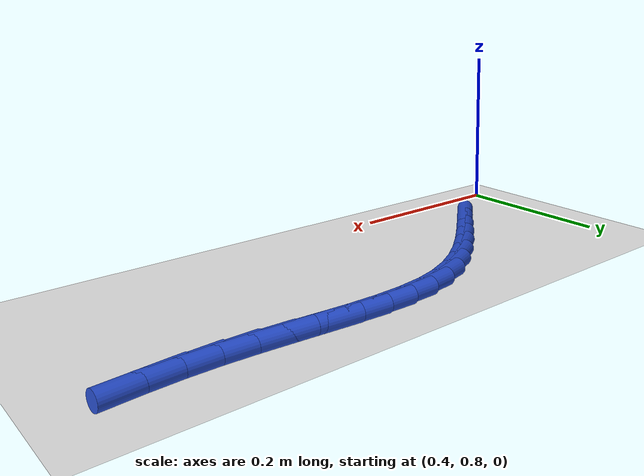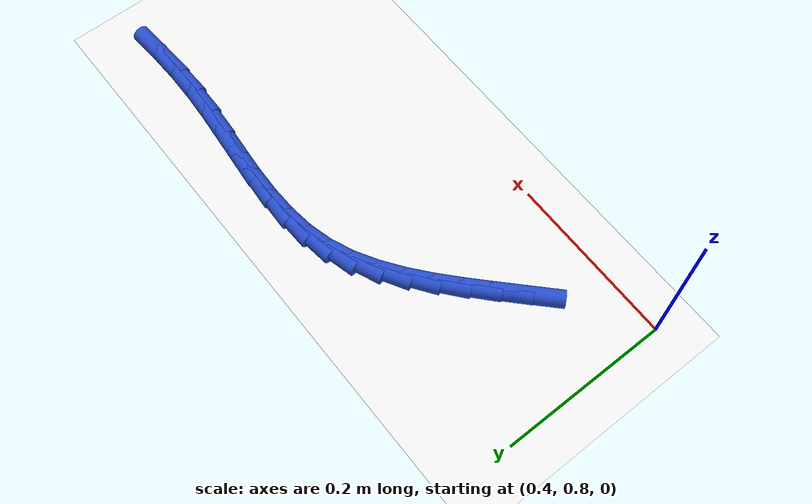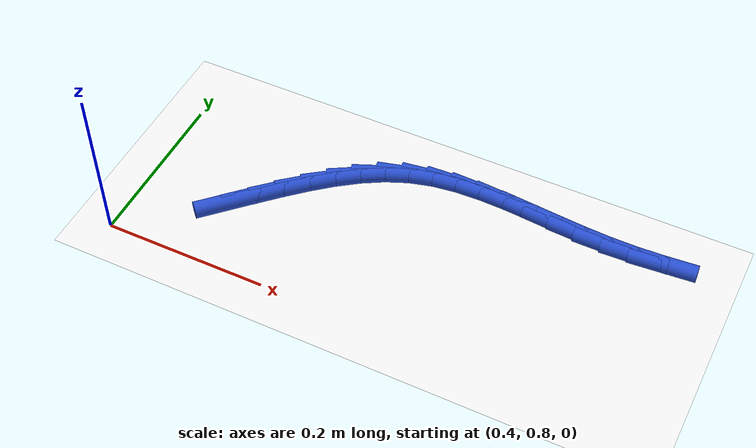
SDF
<sdf version="1.6">
 <world name="default">
  <model name="ground_plane">
   <static>1</static>
   <link name="link">
    <collision name="collision">
     <geometry><plane><normal>0 0 1</normal><size>100 100</size></plane></geometry>
     <surface><friction><ode><mu>100</mu><mu2>50</mu2></ode></friction></surface>
    </collision>
    <visual name="visual">
     <cast_shadows>0</cast_shadows>
     <geometry><plane><normal>0 0 1</normal><size>100 100</size></plane></geometry>
     <material>
      <script><uri>file://media/materials/scripts/gazebo.material</uri><name>Gazebo/WhiteGlow</name></script>
     </material>
    </visual>
   </link>
  </model>
  <model name="line">
   <link name="link_34">
    <pose>0.5091233677856777 0.8832270710562445 0.01 0 1.57 0.7753450988576904</pose>
    <collision name="collision">
     <geometry><cylinder><radius>0.01</radius><length>0.08</length></cylinder></geometry>
    </collision>
    <visual name="visual">
     <material>
      <script><name>Gazebo/Blue</name><uri>file://media/materials/scripts/gazebo.material</uri></script>
     </material>
     <geometry><cylinder><radius>0.01</radius><length>0.08</length></cylinder></geometry>
    </visual>
   </link>
   <link name="link_35">
    <pose>0.5327432483784463 0.9063767583248105 0.01 0 1.57 0.7667006292148798</pose>
    <collision name="collision">
     <geometry><cylinder><radius>0.01</radius><length>0.08</length></cylinder></geometry>
    </collision>
    <visual name="visual">
     <material>
      <script><name>Gazebo/Blue</name><uri>file://media/materials/scripts/gazebo.material</uri></script>
     </material>
     <geometry><cylinder><radius>0.01</radius><length>0.08</length></cylinder></geometry>
    </visual>
   </link>
   <link name="link_36">
    <pose>0.5563111437982103 0.9290794078177206 0.01 0 1.57 0.7391506883423902</pose>
    <collision name="collision">
     <geometry><cylinder><radius>0.01</radius><length>0.08</length></cylinder></geometry>
    </collision>
    <visual name="visual">
     <material>
      <script><name>Gazebo/Blue</name><uri>file://media/materials/scripts/gazebo.material</uri></script>
     </material>
     <geometry><cylinder><radius>0.01</radius><length>0.08</length></cylinder></geometry>
    </visual>
   </link>
   <link name="link_37">
    <pose>0.580061094884449 0.950728279803186 0.01 0 1.57 0.6910634474077436</pose>
    <collision name="collision">
     <geometry><cylinder><radius>0.01</radius><length>0.08</length></cylinder></geometry>
    </collision>
    <visual name="visual">
     <material>
      <script><name>Gazebo/Blue</name><uri>file://media/materials/scripts/gazebo.material</uri></script>
     </material>
     <geometry><cylinder><radius>0.01</radius><length>0.08</length></cylinder></geometry>
    </visual>
   </link>
   <link name="link_38">
    <pose>0.6042271424766409 0.9707166345494165 0.01 0 1.57 0.6201227689362638</pose>
    <collision name="collision">
     <geometry><cylinder><radius>0.01</radius><length>0.08</length></cylinder></geometry>
    </collision>
    <visual name="visual">
     <material>
      <script><name>Gazebo/Blue</name><uri>file://media/materials/scripts/gazebo.material</uri></script>
     </material>
     <geometry><cylinder><radius>0.01</radius><length>0.08</length></cylinder></geometry>
    </visual>
   </link>
   <link name="link_39">
    <pose>0.6290433274142645 0.9884377323246231 0.01 0 1.57 0.5238610718079503</pose>
    <collision name="collision">
     <geometry><cylinder><radius>0.01</radius><length>0.08</length></cylinder></geometry>
    </collision>
    <visual name="visual">
     <material>
      <script><name>Gazebo/Blue</name><uri>file://media/materials/scripts/gazebo.material</uri></script>
     </material>
     <geometry><cylinder><radius>0.01</radius><length>0.08</length></cylinder></geometry>
    </visual>
   </link>
   <link name="link_40">
    <pose>0.6547436905367989 1.0032848333970157 0.01 0 1.57 0.4008743291315447</pose>
    <collision name="collision">
     <geometry><cylinder><radius>0.01</radius><length>0.08</length></cylinder></geometry>
    </collision>
    <visual name="visual">
     <material>
      <script><name>Gazebo/Blue</name><uri>file://media/materials/scripts/gazebo.material</uri></script>
     </material>
     <geometry><cylinder><radius>0.01</radius><length>0.08</length></cylinder></geometry>
    </visual>
   </link>
   <link name="link_41">
    <pose>0.6815622726837227 1.014651198034805 0.01 0 1.57 0.25779829616656136</pose>
    <collision name="collision">
     <geometry><cylinder><radius>0.01</radius><length>0.08</length></cylinder></geometry>
    </collision>
    <visual name="visual">
     <material>
      <script><name>Gazebo/Blue</name><uri>file://media/materials/scripts/gazebo.material</uri></script>
     </material>
     <geometry><cylinder><radius>0.01</radius><length>0.08</length></cylinder></geometry>
    </visual>
   </link>
   <link name="link_42">
    <pose>0.7096908434317354 1.022067729035599 0.01 0 1.57 0.13098296952747399</pose>
    <collision name="collision">
     <geometry><cylinder><radius>0.01</radius><length>0.08</length></cylinder></geometry>
    </collision>
    <visual name="visual">
     <material>
      <script><name>Gazebo/Blue</name><uri>file://media/materials/scripts/gazebo.material</uri></script>
     </material>
     <geometry><cylinder><radius>0.01</radius><length>0.08</length></cylinder></geometry>
    </visual>
   </link>
   <link name="link_43">
    <pose>0.7390538048764727 1.0259359238741572 0.01 0 1.57 0.03485881462698105</pose>
    <collision name="collision">
     <geometry><cylinder><radius>0.01</radius><length>0.08</length></cylinder></geometry>
    </collision>
    <visual name="visual">
     <material>
      <script><name>Gazebo/Blue</name><uri>file://media/materials/scripts/gazebo.material</uri></script>
     </material>
     <geometry><cylinder><radius>0.01</radius><length>0.08</length></cylinder></geometry>
    </visual>
   </link>
   <link name="link_44">
    <pose>0.769471328657897 1.0269966723834474 0.01 0 1.57 -0.03210698605639801</pose>
    <collision name="collision">
     <geometry><cylinder><radius>0.01</radius><length>0.08</length></cylinder></geometry>
    </collision>
    <visual name="visual">
     <material>
      <script><name>Gazebo/Blue</name><uri>file://media/materials/scripts/gazebo.material</uri></script>
     </material>
     <geometry><cylinder><radius>0.01</radius><length>0.08</length></cylinder></geometry>
    </visual>
   </link>
   <link name="link_45">
    <pose>0.800763349904306 1.02599163451925 0.01 0 1.57 -0.07268891583874941</pose>
    <collision name="collision">
     <geometry><cylinder><radius>0.01</radius><length>0.08</length></cylinder></geometry>
    </collision>
    <visual name="visual">
     <material>
      <script><name>Gazebo/Blue</name><uri>file://media/materials/scripts/gazebo.material</uri></script>
     </material>
     <geometry><cylinder><radius>0.01</radius><length>0.08</length></cylinder></geometry>
    </visual>
   </link>
   <link name="link_46">
    <pose>0.8327498037439977 1.0236624702373451 0.01 0 1.57 -0.0893478561496461</pose>
    <collision name="collision">
     <geometry><cylinder><radius>0.01</radius><length>0.08</length></cylinder></geometry>
    </collision>
    <visual name="visual">
     <material>
      <script><name>Gazebo/Blue</name><uri>file://media/materials/scripts/gazebo.material</uri></script>
     </material>
     <geometry><cylinder><radius>0.01</radius><length>0.08</length></cylinder></geometry>
    </visual>
   </link>
   <link name="link_47">
    <pose>0.8652506253052693 1.0207508394935123 0.01 0 1.57 -0.08363048422676934</pose>
    <collision name="collision">
     <geometry><cylinder><radius>0.01</radius><length>0.08</length></cylinder></geometry>
    </collision>
    <visual name="visual">
     <material>
      <script><name>Gazebo/Blue</name><uri>file://media/materials/scripts/gazebo.material</uri></script>
     </material>
     <geometry><cylinder><radius>0.01</radius><length>0.08</length></cylinder></geometry>
    </visual>
   </link>
   <link name="link_48">
    <pose>0.8980857497164194 1.0179984022435316 0.01 0 1.57 -0.05606786682696185</pose>
    <collision name="collision">
     <geometry><cylinder><radius>0.01</radius><length>0.08</length></cylinder></geometry>
    </collision>
    <visual name="visual">
     <material>
      <script><name>Gazebo/Blue</name><uri>file://media/materials/scripts/gazebo.material</uri></script>
     </material>
     <geometry><cylinder><radius>0.01</radius><length>0.08</length></cylinder></geometry>
    </visual>
   </link>
   <link name="link_49">
    <pose>0.9310751121057452 1.0161468184431832 0.01 0 1.57 -0.007897198484865387</pose>
    <collision name="collision">
     <geometry><cylinder><radius>0.01</radius><length>0.08</length></cylinder></geometry>
    </collision>
    <visual name="visual">
     <material>
      <script><name>Gazebo/Blue</name><uri>file://media/materials/scripts/gazebo.material</uri></script>
     </material>
     <geometry><cylinder><radius>0.01</radius><length>0.08</length></cylinder></geometry>
    </visual>
   </link>
   <link name="link_50">
    <pose>0.9640439431642798 1.0158864516278208 0.01 0 1.57 0.04108662085748452</pose>
    <collision name="collision">
     <geometry><cylinder><radius>0.01</radius><length>0.08</length></cylinder></geometry>
    </collision>
    <visual name="visual">
     <material>
      <script><name>Gazebo/Blue</name><uri>file://media/materials/scripts/gazebo.material</uri></script>
     </material>
     <geometry><cylinder><radius>0.01</radius><length>0.08</length></cylinder></geometry>
    </visual>
   </link>
   <link name="link_51">
    <pose>0.9968867495333809 1.0172366113861018 0.01 0 1.57 0.07666247405584407</pose>
    <collision name="collision">
     <geometry><cylinder><radius>0.01</radius><length>0.08</length></cylinder></geometry>
    </collision>
    <visual name="visual">
     <material>
      <script><name>Gazebo/Blue</name><uri>file://media/materials/scripts/gazebo.material</uri></script>
     </material>
     <geometry><cylinder><radius>0.01</radius><length>0.08</length></cylinder></geometry>
    </visual>
   </link>
  </model>
 </world>
</sdf>
